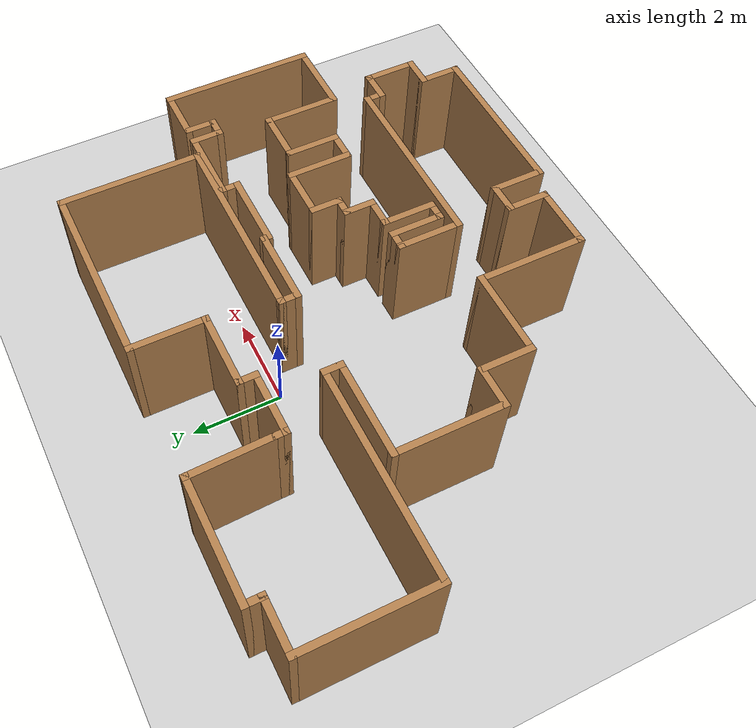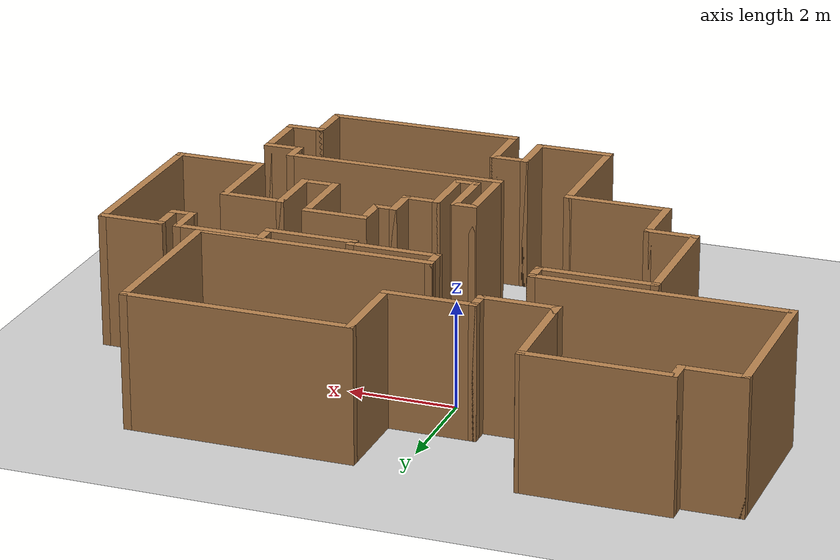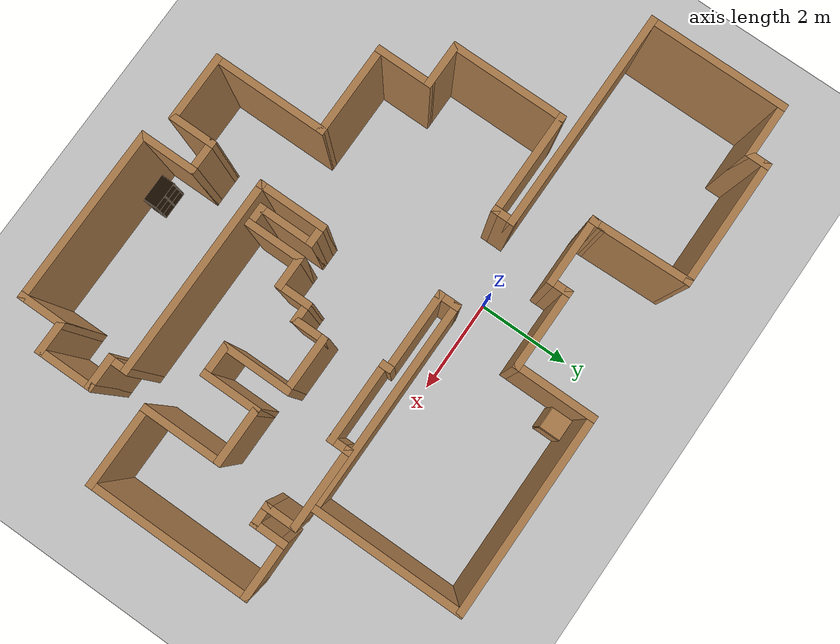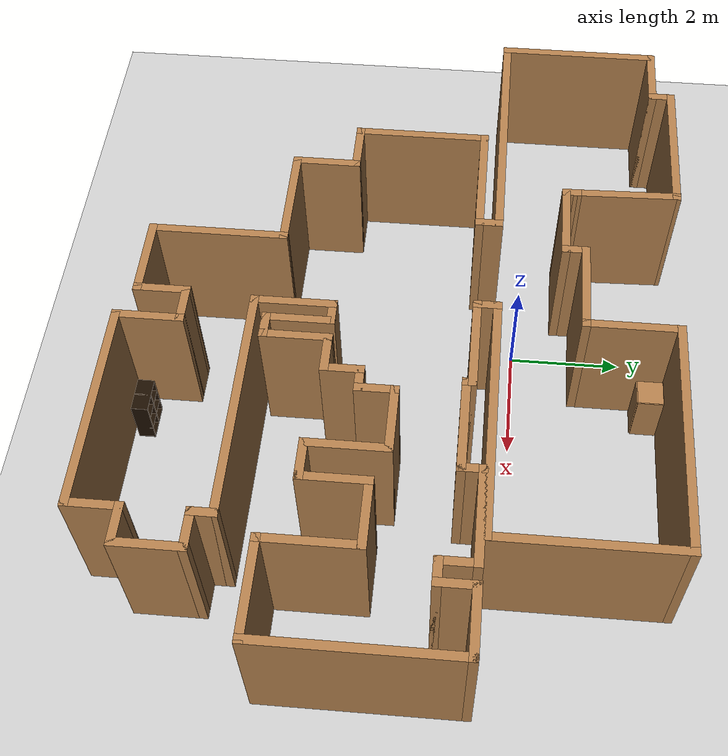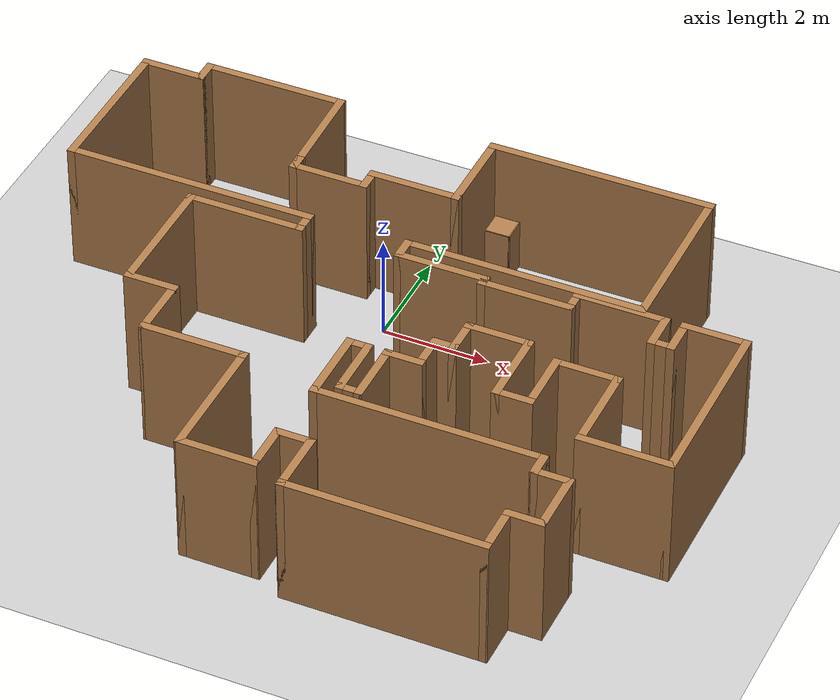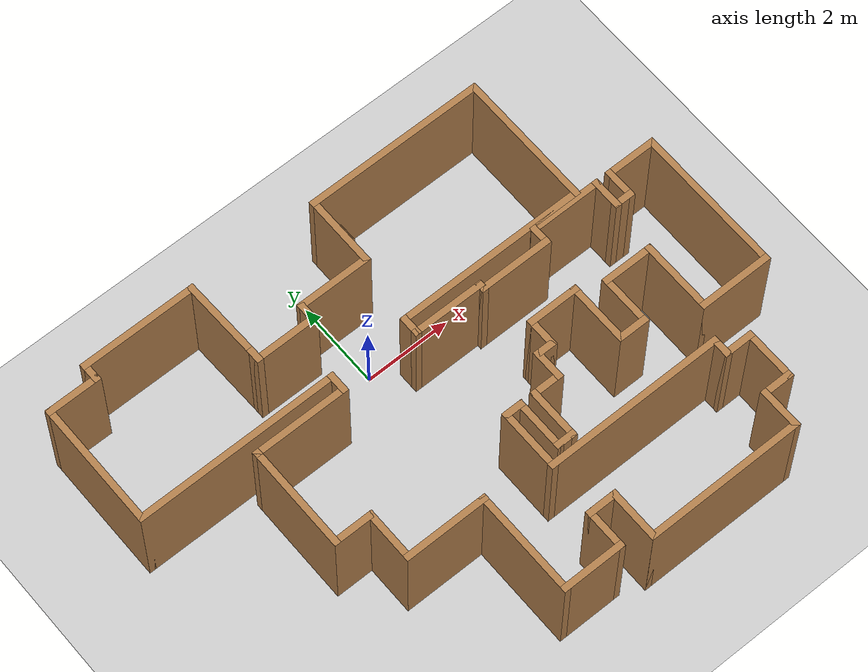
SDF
<sdf version="1.6">
 <world name="default">
  <light name="sun" type="directional">
   <pose>0 0 10 0 -0 0</pose>
   <diffuse>0.8 0.8 0.8 1</diffuse>
   <specular>0.2 0.2 0.2 1</specular>
   <attenuation>
    <range>1000</range>
    <constant>0.9</constant>
    <linear>0.01</linear>
    <quadratic>0.001</quadratic>
   </attenuation>
   <direction>-0.5 0.1 -0.9</direction>
  </light>
  <model name="ground_plane">
   <static>1</static>
   <link name="link">
    <collision name="collision">
     <geometry><plane><normal>0 0 1</normal><size>100 100</size></plane></geometry>
     <surface>
      <contact><collide_bitmask>65535</collide_bitmask></contact>
      <friction><ode><mu>100</mu><mu2>50</mu2></ode></friction>
     </surface>
    </collision>
    <visual name="visual">
     <cast_shadows>0</cast_shadows>
     <geometry><plane><normal>0 0 1</normal><size>100 100</size></plane></geometry>
     <material>
      <script><uri>file://media/materials/scripts/gazebo.material</uri><name>Gazebo/Grey</name></script>
     </material>
    </visual>
   </link>
  </model>
  <gravity>0 0 -9.8</gravity>
  <magnetic_field>6e-06 2.3e-05 -4.2e-05</magnetic_field>
  <atmosphere type="adiabatic"/>
  <physics name="default_physics" default="0" type="ode">
   <max_step_size>0.001</max_step_size>
   <real_time_factor>1</real_time_factor>
   <real_time_update_rate>1000</real_time_update_rate>
  </physics>
  <scene><ambient>0.4 0.4 0.4 1</ambient><background>0.7 0.7 0.7 1</background><shadows>1</shadows></scene>
  <audio><device>default</device></audio>
  <spherical_coordinates>
   <surface_model>EARTH_WGS84</surface_model>
   <latitude_deg>0</latitude_deg>
   <longitude_deg>0</longitude_deg>
   <elevation>0</elevation>
   <heading_deg>0</heading_deg>
  </spherical_coordinates>
  <model name="map_61">
   <pose>0.527991 -2.02355 0 0 -0 0</pose>
   <link name="Wall_0">
    <collision name="Wall_0_Collision">
     <geometry><box><size>2.75 0.15 2.5</size></box></geometry>
     <pose>0 0 1.25 0 -0 0</pose>
    </collision>
    <visual name="Wall_0_Visual">
     <pose>0 0 1.25 0 -0 0</pose>
     <geometry><box><size>2.75 0.15 2.5</size></box></geometry>
     <material>
      <script><uri>file://media/materials/scripts/gazebo.material</uri><name>Gazebo/Wood</name></script>
      <ambient>1 1 1 1</ambient>
     </material>
     <meta><layer>0</layer></meta>
    </visual>
    <pose>-3.95 4.79897 0 0 -0 3.14159</pose>
   </link>
   <link name="Wall_1">
    <collision name="Wall_1_Collision">
     <geometry><box><size>0.5 0.15 2.5</size></box></geometry>
     <pose>0 0 1.25 0 -0 0</pose>
    </collision>
    <visual name="Wall_1_Visual">
     <pose>0 0 1.25 0 -0 0</pose>
     <geometry><box><size>0.5 0.15 2.5</size></box></geometry>
     <material>
      <script><uri>file://media/materials/scripts/gazebo.material</uri><name>Gazebo/Wood</name></script>
      <ambient>1 1 1 1</ambient>
     </material>
     <meta><layer>0</layer></meta>
    </visual>
    <pose>-5.25 4.62397 0 0 -0 -1.5708</pose>
   </link>
   <link name="Wall_10">
    <collision name="Wall_10_Collision">
     <geometry><box><size>2 0.15 2.5</size></box></geometry>
     <pose>0 0 1.25 0 -0 0</pose>
    </collision>
    <visual name="Wall_10_Visual">
     <pose>0 0 1.25 0 -0 0</pose>
     <geometry><box><size>2 0.15 2.5</size></box></geometry>
     <material>
      <script><uri>file://media/materials/scripts/gazebo.material</uri><name>Gazebo/Wood</name></script>
      <ambient>1 1 1 1</ambient>
     </material>
     <meta><layer>0</layer></meta>
    </visual>
    <pose>-2.075 -2.20103 0 0 -0 0</pose>
   </link>
   <link name="Wall_11">
    <collision name="Wall_11_Collision">
     <geometry><box><size>2.5 0.15 2.5</size></box></geometry>
     <pose>0 0 1.25 0 -0 0</pose>
    </collision>
    <visual name="Wall_11_Visual">
     <pose>0 0 1.25 0 -0 0</pose>
     <geometry><box><size>2.5 0.15 2.5</size></box></geometry>
     <material>
      <script><uri>file://media/materials/scripts/gazebo.material</uri><name>Gazebo/Wood</name></script>
      <ambient>1 1 1 1</ambient>
     </material>
     <meta><layer>0</layer></meta>
    </visual>
    <pose>-1.15 -3.37603 0 0 -0 -1.5708</pose>
   </link>
   <link name="Wall_12">
    <collision name="Wall_12_Collision">
     <geometry><box><size>1.5 0.15 2.5</size></box></geometry>
     <pose>0 0 1.25 0 -0 0</pose>
    </collision>
    <visual name="Wall_12_Visual">
     <pose>0 0 1.25 0 -0 0</pose>
     <geometry><box><size>1.5 0.15 2.5</size></box></geometry>
     <material>
      <script><uri>file://media/materials/scripts/gazebo.material</uri><name>Gazebo/Wood</name></script>
      <ambient>1 1 1 1</ambient>
     </material>
     <meta><layer>0</layer></meta>
    </visual>
    <pose>-0.475 -4.55103 0 0 -0 0</pose>
   </link>
   <link name="Wall_13">
    <collision name="Wall_13_Collision">
     <geometry><box><size>1 0.15 2.5</size></box></geometry>
     <pose>0 0 1.25 0 -0 0</pose>
    </collision>
    <visual name="Wall_13_Visual">
     <pose>0 0 1.25 0 -0 0</pose>
     <geometry><box><size>1 0.15 2.5</size></box></geometry>
     <material>
      <script><uri>file://media/materials/scripts/gazebo.material</uri><name>Gazebo/Wood</name></script>
      <ambient>1 1 1 1</ambient>
     </material>
     <meta><layer>0</layer></meta>
    </visual>
    <pose>0.2 -4.12603 0 0 -0 1.5708</pose>
   </link>
   <link name="Wall_14">
    <collision name="Wall_14_Collision">
     <geometry><box><size>0.75 0.15 2.5</size></box></geometry>
     <pose>0 0 1.25 0 -0 0</pose>
    </collision>
    <visual name="Wall_14_Visual">
     <pose>0 0 1.25 0 -0 0</pose>
     <geometry><box><size>0.75 0.15 2.5</size></box></geometry>
     <material>
      <script><uri>file://media/materials/scripts/gazebo.material</uri><name>Gazebo/Wood</name></script>
      <ambient>1 1 1 1</ambient>
     </material>
     <meta><layer>0</layer></meta>
    </visual>
    <pose>0.5 -3.70103 0 0 -0 0</pose>
   </link>
   <link name="Wall_15">
    <collision name="Wall_15_Collision">
     <geometry><box><size>1.25 0.15 2.5</size></box></geometry>
     <pose>0 0 1.25 0 -0 0</pose>
    </collision>
    <visual name="Wall_15_Visual">
     <pose>0 0 1.25 0 -0 0</pose>
     <geometry><box><size>1.25 0.15 2.5</size></box></geometry>
     <material>
      <script><uri>file://media/materials/scripts/gazebo.material</uri><name>Gazebo/Wood</name></script>
      <ambient>1 1 1 1</ambient>
     </material>
     <meta><layer>0</layer></meta>
    </visual>
    <pose>0.8 -4.25103 0 0 -0 -1.5708</pose>
   </link>
   <link name="Wall_16">
    <collision name="Wall_16_Collision">
     <geometry><box><size>3.75 0.15 2.5</size></box></geometry>
     <pose>0 0 1.25 0 -0 0</pose>
    </collision>
    <visual name="Wall_16_Visual">
     <pose>0 0 1.25 0 -0 0</pose>
     <geometry><box><size>3.75 0.15 2.5</size></box></geometry>
     <material>
      <script><uri>file://media/materials/scripts/gazebo.material</uri><name>Gazebo/Wood</name></script>
      <ambient>1 1 1 1</ambient>
     </material>
     <meta><layer>0</layer></meta>
    </visual>
    <pose>2.6 -4.80103 0 0 -0 0</pose>
   </link>
   <link name="Wall_17">
    <collision name="Wall_17_Collision">
     <geometry><box><size>1 0.15 2.5</size></box></geometry>
     <pose>0 0 1.25 0 -0 0</pose>
    </collision>
    <visual name="Wall_17_Visual">
     <pose>0 0 1.25 0 -0 0</pose>
     <geometry><box><size>1 0.15 2.5</size></box></geometry>
     <material>
      <script><uri>file://media/materials/scripts/gazebo.material</uri><name>Gazebo/Wood</name></script>
      <ambient>1 1 1 1</ambient>
     </material>
     <meta><layer>0</layer></meta>
    </visual>
    <pose>4.4 -4.37603 0 0 -0 1.5708</pose>
   </link>
   <link name="Wall_18">
    <collision name="Wall_18_Collision">
     <geometry><box><size>0.75 0.15 2.5</size></box></geometry>
     <pose>0 0 1.25 0 -0 0</pose>
    </collision>
    <visual name="Wall_18_Visual">
     <pose>0 0 1.25 0 -0 0</pose>
     <geometry><box><size>0.75 0.15 2.5</size></box></geometry>
     <material>
      <script><uri>file://media/materials/scripts/gazebo.material</uri><name>Gazebo/Wood</name></script>
      <ambient>1 1 1 1</ambient>
     </material>
     <meta><layer>0</layer></meta>
    </visual>
    <pose>4.7 -3.95103 0 0 -0 0</pose>
   </link>
   <link name="Wall_19">
    <collision name="Wall_19_Collision">
     <geometry><box><size>1.25 0.15 2.5</size></box></geometry>
     <pose>0 0 1.25 0 -0 0</pose>
    </collision>
    <visual name="Wall_19_Visual">
     <pose>0 0 1.25 0 -0 0</pose>
     <geometry><box><size>1.25 0.15 2.5</size></box></geometry>
     <material>
      <script><uri>file://media/materials/scripts/gazebo.material</uri><name>Gazebo/Wood</name></script>
      <ambient>1 1 1 1</ambient>
     </material>
     <meta><layer>0</layer></meta>
    </visual>
    <pose>5 -3.40103 0 0 -0 1.5708</pose>
   </link>
   <link name="Wall_2">
    <collision name="Wall_2_Collision">
     <geometry><box><size>1.25 0.15 2.5</size></box></geometry>
     <pose>0 0 1.25 0 -0 0</pose>
    </collision>
    <visual name="Wall_2_Visual">
     <pose>0 0 1.25 0 -0 0</pose>
     <geometry><box><size>1.25 0.15 2.5</size></box></geometry>
     <material>
      <script><uri>file://media/materials/scripts/gazebo.material</uri><name>Gazebo/Wood</name></script>
      <ambient>1 1 1 1</ambient>
     </material>
     <meta><layer>0</layer></meta>
    </visual>
    <pose>-5.8 4.44897 0 0 -0 3.14159</pose>
   </link>
   <link name="Wall_22">
    <collision name="Wall_22_Collision">
     <geometry><box><size>0.75 0.15 2.5</size></box></geometry>
     <pose>0 0 1.25 0 -0 0</pose>
    </collision>
    <visual name="Wall_22_Visual">
     <pose>0 0 1.25 0 -0 0</pose>
     <geometry><box><size>0.75 0.15 2.5</size></box></geometry>
     <material>
      <script><uri>file://media/materials/scripts/gazebo.material</uri><name>Gazebo/Wood</name></script>
      <ambient>1 1 1 1</ambient>
     </material>
     <meta><layer>0</layer></meta>
    </visual>
    <pose>4.7 -2.85103 0 0 -0 3.14159</pose>
   </link>
   <link name="Wall_23">
    <collision name="Wall_23_Collision">
     <geometry><box><size>0.5 0.15 2.5</size></box></geometry>
     <pose>0 0 1.25 0 -0 0</pose>
    </collision>
    <visual name="Wall_23_Visual">
     <pose>0 0 1.25 0 -0 0</pose>
     <geometry><box><size>0.5 0.15 2.5</size></box></geometry>
     <material>
      <script><uri>file://media/materials/scripts/gazebo.material</uri><name>Gazebo/Wood</name></script>
      <ambient>1 1 1 1</ambient>
     </material>
     <meta><layer>0</layer></meta>
    </visual>
    <pose>4.4 -2.67603 0 0 -0 1.5708</pose>
   </link>
   <link name="Wall_24">
    <collision name="Wall_24_Collision">
     <geometry><box><size>4.25 0.15 2.5</size></box></geometry>
     <pose>0 0 1.25 0 -0 0</pose>
    </collision>
    <visual name="Wall_24_Visual">
     <pose>0 0 1.25 0 -0 0</pose>
     <geometry><box><size>4.25 0.15 2.5</size></box></geometry>
     <material>
      <script><uri>file://media/materials/scripts/gazebo.material</uri><name>Gazebo/Wood</name></script>
      <ambient>1 1 1 1</ambient>
     </material>
     <meta><layer>0</layer></meta>
    </visual>
    <pose>2.35 -2.50103 0 0 -0 3.14159</pose>
   </link>
   <link name="Wall_25">
    <collision name="Wall_25_Collision">
     <geometry><box><size>1.5 0.15 2.5</size></box></geometry>
     <pose>0 0 1.25 0 -0 0</pose>
    </collision>
    <visual name="Wall_25_Visual">
     <pose>0 0 1.25 0 -0 0</pose>
     <geometry><box><size>1.5 0.15 2.5</size></box></geometry>
     <material>
      <script><uri>file://media/materials/scripts/gazebo.material</uri><name>Gazebo/Wood</name></script>
      <ambient>1 1 1 1</ambient>
     </material>
     <meta><layer>0</layer></meta>
    </visual>
    <pose>0.3 -1.82603 0 0 -0 1.5708</pose>
   </link>
   <link name="Wall_26">
    <collision name="Wall_26_Collision">
     <geometry><box><size>0.5 0.15 2.5</size></box></geometry>
     <pose>0 0 1.25 0 -0 0</pose>
    </collision>
    <visual name="Wall_26_Visual">
     <pose>0 0 1.25 0 -0 0</pose>
     <geometry><box><size>0.5 0.15 2.5</size></box></geometry>
     <material>
      <script><uri>file://media/materials/scripts/gazebo.material</uri><name>Gazebo/Wood</name></script>
      <ambient>1 1 1 1</ambient>
     </material>
     <meta><layer>0</layer></meta>
    </visual>
    <pose>0.475 -1.15103 0 0 -0 0</pose>
   </link>
   <link name="Wall_27">
    <collision name="Wall_27_Collision">
     <geometry><box><size>1.25 0.15 2.5</size></box></geometry>
     <pose>0 0 1.25 0 -0 0</pose>
    </collision>
    <visual name="Wall_27_Visual">
     <pose>0 0 1.25 0 -0 0</pose>
     <geometry><box><size>1.25 0.15 2.5</size></box></geometry>
     <material>
      <script><uri>file://media/materials/scripts/gazebo.material</uri><name>Gazebo/Wood</name></script>
      <ambient>1 1 1 1</ambient>
     </material>
     <meta><layer>0</layer></meta>
    </visual>
    <pose>0.65 -1.70103 0 0 -0 -1.5708</pose>
   </link>
   <link name="Wall_28">
    <collision name="Wall_28_Collision">
     <geometry><box><size>0.5 0.15 2.5</size></box></geometry>
     <pose>0 0 1.25 0 -0 0</pose>
    </collision>
    <visual name="Wall_28_Visual">
     <pose>0 0 1.25 0 -0 0</pose>
     <geometry><box><size>0.5 0.15 2.5</size></box></geometry>
     <material>
      <script><uri>file://media/materials/scripts/gazebo.material</uri><name>Gazebo/Wood</name></script>
      <ambient>1 1 1 1</ambient>
     </material>
     <meta><layer>0</layer></meta>
    </visual>
    <pose>0.825 -2.25103 0 0 -0 0</pose>
   </link>
   <link name="Wall_29">
    <collision name="Wall_29_Collision">
     <geometry><box><size>1.25 0.15 2.5</size></box></geometry>
     <pose>0 0 1.25 0 -0 0</pose>
    </collision>
    <visual name="Wall_29_Visual">
     <pose>0 0 1.25 0 -0 0</pose>
     <geometry><box><size>1.25 0.15 2.5</size></box></geometry>
     <material>
      <script><uri>file://media/materials/scripts/gazebo.material</uri><name>Gazebo/Wood</name></script>
      <ambient>1 1 1 1</ambient>
     </material>
     <meta><layer>0</layer></meta>
    </visual>
    <pose>1 -1.70103 0 0 -0 1.5708</pose>
   </link>
   <link name="Wall_3">
    <collision name="Wall_3_Collision">
     <geometry><box><size>3 0.15 2.5</size></box></geometry>
     <pose>0 0 1.25 0 -0 0</pose>
    </collision>
    <visual name="Wall_3_Visual">
     <pose>0 0 1.25 0 -0 0</pose>
     <geometry><box><size>3 0.15 2.5</size></box></geometry>
     <material>
      <script><uri>file://media/materials/scripts/gazebo.material</uri><name>Gazebo/Wood</name></script>
      <ambient>1 1 1 1</ambient>
     </material>
     <meta><layer>0</layer></meta>
    </visual>
    <pose>-6.35 3.02397 0 0 -0 -1.5708</pose>
   </link>
   <link name="Wall_30">
    <collision name="Wall_30_Collision">
     <geometry><box><size>0.75 0.15 2.5</size></box></geometry>
     <pose>0 0 1.25 0 -0 0</pose>
    </collision>
    <visual name="Wall_30_Visual">
     <pose>0 0 1.25 0 -0 0</pose>
     <geometry><box><size>0.75 0.15 2.5</size></box></geometry>
     <material>
      <script><uri>file://media/materials/scripts/gazebo.material</uri><name>Gazebo/Wood</name></script>
      <ambient>1 1 1 1</ambient>
     </material>
     <meta><layer>0</layer></meta>
    </visual>
    <pose>1.3 -1.15103 0 0 -0 0</pose>
   </link>
   <link name="Wall_31">
    <collision name="Wall_31_Collision">
     <geometry><box><size>0.75 0.15 2.5</size></box></geometry>
     <pose>0 0 1.25 0 -0 0</pose>
    </collision>
    <visual name="Wall_31_Visual">
     <pose>0 0 1.25 0 -0 0</pose>
     <geometry><box><size>0.75 0.15 2.5</size></box></geometry>
     <material>
      <script><uri>file://media/materials/scripts/gazebo.material</uri><name>Gazebo/Wood</name></script>
      <ambient>1 1 1 1</ambient>
     </material>
     <meta><layer>0</layer></meta>
    </visual>
    <pose>1.6 -0.851027 0 0 -0 1.5708</pose>
   </link>
   <link name="Wall_32">
    <collision name="Wall_32_Collision">
     <geometry><box><size>0.5 0.15 2.5</size></box></geometry>
     <pose>0 0 1.25 0 -0 0</pose>
    </collision>
    <visual name="Wall_32_Visual">
     <pose>0 0 1.25 0 -0 0</pose>
     <geometry><box><size>0.5 0.15 2.5</size></box></geometry>
     <material>
      <script><uri>file://media/materials/scripts/gazebo.material</uri><name>Gazebo/Wood</name></script>
      <ambient>1 1 1 1</ambient>
     </material>
     <meta><layer>0</layer></meta>
    </visual>
    <pose>1.775 -0.551027 0 0 -0 0</pose>
   </link>
   <link name="Wall_33">
    <collision name="Wall_33_Collision">
     <geometry><box><size>0.75 0.15 2.5</size></box></geometry>
     <pose>0 0 1.25 0 -0 0</pose>
    </collision>
    <visual name="Wall_33_Visual">
     <pose>0 0 1.25 0 -0 0</pose>
     <geometry><box><size>0.75 0.15 2.5</size></box></geometry>
     <material>
      <script><uri>file://media/materials/scripts/gazebo.material</uri><name>Gazebo/Wood</name></script>
      <ambient>1 1 1 1</ambient>
     </material>
     <meta><layer>0</layer></meta>
    </visual>
    <pose>1.95 -0.251027 0 0 -0 1.5708</pose>
   </link>
   <link name="Wall_34">
    <collision name="Wall_34_Collision">
     <geometry><box><size>1.25 0.15 2.5</size></box></geometry>
     <pose>0 0 1.25 0 -0 0</pose>
    </collision>
    <visual name="Wall_34_Visual">
     <pose>0 0 1.25 0 -0 0</pose>
     <geometry><box><size>1.25 0.15 2.5</size></box></geometry>
     <material>
      <script><uri>file://media/materials/scripts/gazebo.material</uri><name>Gazebo/Wood</name></script>
      <ambient>1 1 1 1</ambient>
     </material>
     <meta><layer>0</layer></meta>
    </visual>
    <pose>2.5 0.048973 0 0 -0 0</pose>
   </link>
   <link name="Wall_35">
    <collision name="Wall_35_Collision">
     <geometry><box><size>1.5 0.15 2.5</size></box></geometry>
     <pose>0 0 1.25 0 -0 0</pose>
    </collision>
    <visual name="Wall_35_Visual">
     <pose>0 0 1.25 0 -0 0</pose>
     <geometry><box><size>1.5 0.15 2.5</size></box></geometry>
     <material>
      <script><uri>file://media/materials/scripts/gazebo.material</uri><name>Gazebo/Wood</name></script>
      <ambient>1 1 1 1</ambient>
     </material>
     <meta><layer>0</layer></meta>
    </visual>
    <pose>3.05 -0.626027 0 0 -0 -1.5708</pose>
   </link>
   <link name="Wall_36">
    <collision name="Wall_36_Collision">
     <geometry><box><size>0.75 0.15 2.5</size></box></geometry>
     <pose>0 0 1.25 0 -0 0</pose>
    </collision>
    <visual name="Wall_36_Visual">
     <pose>0 0 1.25 0 -0 0</pose>
     <geometry><box><size>0.75 0.15 2.5</size></box></geometry>
     <material>
      <script><uri>file://media/materials/scripts/gazebo.material</uri><name>Gazebo/Wood</name></script>
      <ambient>1 1 1 1</ambient>
     </material>
     <meta><layer>0</layer></meta>
    </visual>
    <pose>3.35 -1.30103 0 0 -0 0</pose>
   </link>
   <link name="Wall_37">
    <collision name="Wall_37_Collision">
     <geometry><box><size>1.25 0.15 2.5</size></box></geometry>
     <pose>0 0 1.25 0 -0 0</pose>
    </collision>
    <visual name="Wall_37_Visual">
     <pose>0 0 1.25 0 -0 0</pose>
     <geometry><box><size>1.25 0.15 2.5</size></box></geometry>
     <material>
      <script><uri>file://media/materials/scripts/gazebo.material</uri><name>Gazebo/Wood</name></script>
      <ambient>1 1 1 1</ambient>
     </material>
     <meta><layer>0</layer></meta>
    </visual>
    <pose>3.65 -0.751027 0 0 -0 1.5708</pose>
   </link>
   <link name="Wall_38">
    <collision name="Wall_38_Collision">
     <geometry><box><size>1.25 0.15 2.5</size></box></geometry>
     <pose>0 0 1.25 0 -0 0</pose>
    </collision>
    <visual name="Wall_38_Visual">
     <pose>0 0 1.25 0 -0 0</pose>
     <geometry><box><size>1.25 0.15 2.5</size></box></geometry>
     <material>
      <script><uri>file://media/materials/scripts/gazebo.material</uri><name>Gazebo/Wood</name></script>
      <ambient>1 1 1 1</ambient>
     </material>
     <meta><layer>0</layer></meta>
    </visual>
    <pose>4.2 -0.201027 0 0 -0 0</pose>
   </link>
   <link name="Wall_39">
    <collision name="Wall_39_Collision">
     <geometry><box><size>1.75 0.15 2.5</size></box></geometry>
     <pose>0 0 1.25 0 -0 0</pose>
    </collision>
    <visual name="Wall_39_Visual">
     <pose>0 0 1.25 0 -0 0</pose>
     <geometry><box><size>1.75 0.15 2.5</size></box></geometry>
     <material>
      <script><uri>file://media/materials/scripts/gazebo.material</uri><name>Gazebo/Wood</name></script>
      <ambient>1 1 1 1</ambient>
     </material>
     <meta><layer>0</layer></meta>
    </visual>
    <pose>4.75 -1.00103 0 0 -0 -1.5708</pose>
   </link>
   <link name="Wall_4">
    <collision name="Wall_4_Collision">
     <geometry><box><size>4.75 0.15 2.5</size></box></geometry>
     <pose>0 0 1.25 0 -0 0</pose>
    </collision>
    <visual name="Wall_4_Visual">
     <pose>0 0 1.25 0 -0 0</pose>
     <geometry><box><size>4.75 0.15 2.5</size></box></geometry>
     <material>
      <script><uri>file://media/materials/scripts/gazebo.material</uri><name>Gazebo/Wood</name></script>
      <ambient>1 1 1 1</ambient>
     </material>
     <meta><layer>0</layer></meta>
    </visual>
    <pose>-4.05 1.59897 0 0 -0 0</pose>
   </link>
   <link name="Wall_40">
    <collision name="Wall_40_Collision">
     <geometry><box><size>1.75 0.15 2.5</size></box></geometry>
     <pose>0 0 1.25 0 -0 0</pose>
    </collision>
    <visual name="Wall_40_Visual">
     <pose>0 0 1.25 0 -0 0</pose>
     <geometry><box><size>1.75 0.15 2.5</size></box></geometry>
     <material>
      <script><uri>file://media/materials/scripts/gazebo.material</uri><name>Gazebo/Wood</name></script>
      <ambient>1 1 1 1</ambient>
     </material>
     <meta><layer>0</layer></meta>
    </visual>
    <pose>5.55 -1.80103 0 0 -0 0</pose>
   </link>
   <link name="Wall_41">
    <collision name="Wall_41_Collision">
     <geometry><box><size>3.5 0.15 2.5</size></box></geometry>
     <pose>0 0 1.25 0 -0 0</pose>
    </collision>
    <visual name="Wall_41_Visual">
     <pose>0 0 1.25 0 -0 0</pose>
     <geometry><box><size>3.5 0.15 2.5</size></box></geometry>
     <material>
      <script><uri>file://media/materials/scripts/gazebo.material</uri><name>Gazebo/Wood</name></script>
      <ambient>1 1 1 1</ambient>
     </material>
     <meta><layer>0</layer></meta>
    </visual>
    <pose>6.35 -0.126027 0 0 -0 1.5708</pose>
   </link>
   <link name="Wall_42">
    <collision name="Wall_42_Collision">
     <geometry><box><size>1.25 0.15 2.5</size></box></geometry>
     <pose>0 0 1.25 0 -0 0</pose>
    </collision>
    <visual name="Wall_42_Visual">
     <pose>0 0 1.25 0 -0 0</pose>
     <geometry><box><size>1.25 0.15 2.5</size></box></geometry>
     <material>
      <script><uri>file://media/materials/scripts/gazebo.material</uri><name>Gazebo/Wood</name></script>
      <ambient>1 1 1 1</ambient>
     </material>
     <meta><layer>0</layer></meta>
    </visual>
    <pose>5.8 1.54897 0 0 -0 3.14159</pose>
   </link>
   <link name="Wall_43">
    <collision name="Wall_43_Collision">
     <geometry><box><size>0.75 0.15 2.5</size></box></geometry>
     <pose>0 0 1.25 0 -0 0</pose>
    </collision>
    <visual name="Wall_43_Visual">
     <pose>0 0 1.25 0 -0 0</pose>
     <geometry><box><size>0.75 0.15 2.5</size></box></geometry>
     <material>
      <script><uri>file://media/materials/scripts/gazebo.material</uri><name>Gazebo/Wood</name></script>
      <ambient>1 1 1 1</ambient>
     </material>
     <meta><layer>0</layer></meta>
    </visual>
    <pose>5.25 1.24897 0 0 -0 -1.5708</pose>
   </link>
   <link name="Wall_44">
    <collision name="Wall_44_Collision">
     <geometry><box><size>0.5 0.15 2.5</size></box></geometry>
     <pose>0 0 1.25 0 -0 0</pose>
    </collision>
    <visual name="Wall_44_Visual">
     <pose>0 0 1.25 0 -0 0</pose>
     <geometry><box><size>0.5 0.15 2.5</size></box></geometry>
     <material>
      <script><uri>file://media/materials/scripts/gazebo.material</uri><name>Gazebo/Wood</name></script>
      <ambient>1 1 1 1</ambient>
     </material>
     <meta><layer>0</layer></meta>
    </visual>
    <pose>5.075 0.948973 0 0 -0 3.14159</pose>
   </link>
   <link name="Wall_47">
    <collision name="Wall_47_Collision">
     <geometry><box><size>0.75 0.15 2.5</size></box></geometry>
     <pose>0 0 1.25 0 -0 0</pose>
    </collision>
    <visual name="Wall_47_Visual">
     <pose>0 0 1.25 0 -0 0</pose>
     <geometry><box><size>0.75 0.15 2.5</size></box></geometry>
     <material>
      <script><uri>file://media/materials/scripts/gazebo.material</uri><name>Gazebo/Wood</name></script>
      <ambient>1 1 1 1</ambient>
     </material>
     <meta><layer>0</layer></meta>
    </visual>
    <pose>4.9 1.24897 0 0 -0 1.5708</pose>
   </link>
   <link name="Wall_48">
    <collision name="Wall_48_Collision">
     <geometry><box><size>1.75 0.15 2.5</size></box></geometry>
     <pose>0 0 1.25 0 -0 0</pose>
    </collision>
    <visual name="Wall_48_Visual">
     <pose>0 0 1.25 0 -0 0</pose>
     <geometry><box><size>1.75 0.15 2.5</size></box></geometry>
     <material>
      <script><uri>file://media/materials/scripts/gazebo.material</uri><name>Gazebo/Wood</name></script>
      <ambient>1 1 1 1</ambient>
     </material>
     <meta><layer>0</layer></meta>
    </visual>
    <pose>4.1 1.54897 0 0 -0 3.14159</pose>
   </link>
   <link name="Wall_49">
    <collision name="Wall_49_Collision">
     <geometry><box><size>0.5 0.15 2.5</size></box></geometry>
     <pose>0 0 1.25 0 -0 0</pose>
    </collision>
    <visual name="Wall_49_Visual">
     <pose>0 0 1.25 0 -0 0</pose>
     <geometry><box><size>0.5 0.15 2.5</size></box></geometry>
     <material>
      <script><uri>file://media/materials/scripts/gazebo.material</uri><name>Gazebo/Wood</name></script>
      <ambient>1 1 1 1</ambient>
     </material>
     <meta><layer>0</layer></meta>
    </visual>
    <pose>3.3 1.37397 0 0 -0 -1.5708</pose>
   </link>
   <link name="Wall_5">
    <collision name="Wall_5_Collision">
     <geometry><box><size>0.5 0.15 2.5</size></box></geometry>
     <pose>0 0 1.25 0 -0 0</pose>
    </collision>
    <visual name="Wall_5_Visual">
     <pose>0 0 1.25 0 -0 0</pose>
     <geometry><box><size>0.5 0.15 2.5</size></box></geometry>
     <material>
      <script><uri>file://media/materials/scripts/gazebo.material</uri><name>Gazebo/Wood</name></script>
      <ambient>1 1 1 1</ambient>
     </material>
     <meta><layer>0</layer></meta>
    </visual>
    <pose>-1.75 1.42397 0 0 -0 -1.5708</pose>
   </link>
   <link name="Wall_50">
    <collision name="Wall_50_Collision">
     <geometry><box><size>1.75 0.15 2.5</size></box></geometry>
     <pose>0 0 1.25 0 -0 0</pose>
    </collision>
    <visual name="Wall_50_Visual">
     <pose>0 0 1.25 0 -0 0</pose>
     <geometry><box><size>1.75 0.15 2.5</size></box></geometry>
     <material>
      <script><uri>file://media/materials/scripts/gazebo.material</uri><name>Gazebo/Wood</name></script>
      <ambient>1 1 1 1</ambient>
     </material>
     <meta><layer>0</layer></meta>
    </visual>
    <pose>2.5 1.19897 0 0 -0 3.14159</pose>
   </link>
   <link name="Wall_51">
    <collision name="Wall_51_Collision">
     <geometry><box><size>0.25 0.15 2.5</size></box></geometry>
     <pose>0 0 1.25 0 -0 0</pose>
    </collision>
    <visual name="Wall_51_Visual">
     <pose>0 0 1.25 0 -0 0</pose>
     <geometry><box><size>0.25 0.15 2.5</size></box></geometry>
     <material>
      <script><uri>file://media/materials/scripts/gazebo.material</uri><name>Gazebo/Wood</name></script>
      <ambient>1 1 1 1</ambient>
     </material>
     <meta><layer>0</layer></meta>
    </visual>
    <pose>1.7 1.24897 0 0 -0 1.5708</pose>
   </link>
   <link name="Wall_52">
    <collision name="Wall_52_Collision">
     <geometry><box><size>1.75 0.15 2.5</size></box></geometry>
     <pose>0 0 1.25 0 -0 0</pose>
    </collision>
    <visual name="Wall_52_Visual">
     <pose>0 0 1.25 0 -0 0</pose>
     <geometry><box><size>1.75 0.15 2.5</size></box></geometry>
     <material>
      <script><uri>file://media/materials/scripts/gazebo.material</uri><name>Gazebo/Wood</name></script>
      <ambient>1 1 1 1</ambient>
     </material>
     <meta><layer>0</layer></meta>
    </visual>
    <pose>0.9 1.29897 0 0 -0 3.14159</pose>
   </link>
   <link name="Wall_53">
    <collision name="Wall_53_Collision">
     <geometry><box><size>0.5 0.15 2.5</size></box></geometry>
     <pose>0 0 1.25 0 -0 0</pose>
    </collision>
    <visual name="Wall_53_Visual">
     <pose>0 0 1.25 0 -0 0</pose>
     <geometry><box><size>0.5 0.15 2.5</size></box></geometry>
     <material>
      <script><uri>file://media/materials/scripts/gazebo.material</uri><name>Gazebo/Wood</name></script>
      <ambient>1 1 1 1</ambient>
     </material>
     <meta><layer>0</layer></meta>
    </visual>
    <pose>0.1 1.47397 0 0 -0 1.5708</pose>
   </link>
   <link name="Wall_54">
    <collision name="Wall_54_Collision">
     <geometry><box><size>4.5 0.15 2.5</size></box></geometry>
     <pose>0 0 1.25 0 -0 0</pose>
    </collision>
    <visual name="Wall_54_Visual">
     <pose>0 0 1.25 0 -0 0</pose>
     <geometry><box><size>4.5 0.15 2.5</size></box></geometry>
     <material>
      <script><uri>file://media/materials/scripts/gazebo.material</uri><name>Gazebo/Wood</name></script>
      <ambient>1 1 1 1</ambient>
     </material>
     <meta><layer>0</layer></meta>
    </visual>
    <pose>2.275 1.64897 0 0 -0 0</pose>
   </link>
   <link name="Wall_55">
    <collision name="Wall_55_Collision">
     <geometry><box><size>3.25 0.15 2.5</size></box></geometry>
     <pose>0 0 1.25 0 -0 0</pose>
    </collision>
    <visual name="Wall_55_Visual">
     <pose>0 0 1.25 0 -0 0</pose>
     <geometry><box><size>3.25 0.15 2.5</size></box></geometry>
     <material>
      <script><uri>file://media/materials/scripts/gazebo.material</uri><name>Gazebo/Wood</name></script>
      <ambient>1 1 1 1</ambient>
     </material>
     <meta><layer>0</layer></meta>
    </visual>
    <pose>4.45 3.19897 0 0 -0 1.5708</pose>
   </link>
   <link name="Wall_56">
    <collision name="Wall_56_Collision">
     <geometry><box><size>4.25 0.15 2.5</size></box></geometry>
     <pose>0 0 1.25 0 -0 0</pose>
    </collision>
    <visual name="Wall_56_Visual">
     <pose>0 0 1.25 0 -0 0</pose>
     <geometry><box><size>4.25 0.15 2.5</size></box></geometry>
     <material>
      <script><uri>file://media/materials/scripts/gazebo.material</uri><name>Gazebo/Wood</name></script>
      <ambient>1 1 1 1</ambient>
     </material>
     <meta><layer>0</layer></meta>
    </visual>
    <pose>2.4 4.74897 0 0 -0 3.14159</pose>
   </link>
   <link name="Wall_6">
    <collision name="Wall_6_Collision">
     <geometry><box><size>2.25 0.15 2.5</size></box></geometry>
     <pose>0 0 1.25 0 -0 0</pose>
    </collision>
    <visual name="Wall_6_Visual">
     <pose>0 0 1.25 0 -0 0</pose>
     <geometry><box><size>2.25 0.15 2.5</size></box></geometry>
     <material>
      <script><uri>file://media/materials/scripts/gazebo.material</uri><name>Gazebo/Wood</name></script>
      <ambient>1 1 1 1</ambient>
     </material>
     <meta><layer>0</layer></meta>
    </visual>
    <pose>-2.8 1.24897 0 0 -0 3.14159</pose>
   </link>
   <link name="Wall_63">
    <collision name="Wall_63_Collision">
     <geometry><box><size>1.95069 0.15 2.5</size></box></geometry>
     <pose>0 0 1.25 0 -0 0</pose>
    </collision>
    <visual name="Wall_63_Visual">
     <pose>0 0 1.25 0 -0 0</pose>
     <geometry><box><size>1.95069 0.15 2.5</size></box></geometry>
     <material>
      <script><uri>file://media/materials/scripts/gazebo.material</uri><name>Gazebo/Wood</name></script>
      <ambient>1 1 1 1</ambient>
     </material>
     <meta><layer>0</layer></meta>
    </visual>
    <pose>-2.625 3.89897 0 0 -0 1.59857</pose>
   </link>
   <link name="Wall_7">
    <collision name="Wall_7_Collision">
     <geometry><box><size>2.5 0.15 2.5</size></box></geometry>
     <pose>0 0 1.25 0 -0 0</pose>
    </collision>
    <visual name="Wall_7_Visual">
     <pose>0 0 1.25 0 -0 0</pose>
     <geometry><box><size>2.5 0.15 2.5</size></box></geometry>
     <material>
      <script><uri>file://media/materials/scripts/gazebo.material</uri><name>Gazebo/Wood</name></script>
      <ambient>1 1 1 1</ambient>
     </material>
     <meta><layer>0</layer></meta>
    </visual>
    <pose>-3.85 0.073973 0 0 -0 -1.5708</pose>
   </link>
   <link name="Wall_79">
    <collision name="Wall_79_Collision">
     <geometry><box><size>1.75 0.15 2.5</size></box></geometry>
     <pose>0 0 1.25 0 -0 0</pose>
    </collision>
    <visual name="Wall_79_Visual">
     <pose>0 0 1.25 0 -0 0</pose>
     <geometry><box><size>1.75 0.15 2.5</size></box></geometry>
     <material>
      <script><uri>file://media/materials/scripts/gazebo.material</uri><name>Gazebo/Wood</name></script>
      <ambient>1 1 1 1</ambient>
     </material>
     <meta><layer>0</layer></meta>
    </visual>
    <pose>0.35 3.94897 0 0 -0 -1.5708</pose>
   </link>
   <link name="Wall_8">
    <collision name="Wall_8_Collision">
     <geometry><box><size>1 0.15 2.5</size></box></geometry>
     <pose>0 0 1.25 0 -0 0</pose>
    </collision>
    <visual name="Wall_8_Visual">
     <pose>0 0 1.25 0 -0 0</pose>
     <geometry><box><size>1 0.15 2.5</size></box></geometry>
     <material>
      <script><uri>file://media/materials/scripts/gazebo.material</uri><name>Gazebo/Wood</name></script>
      <ambient>1 1 1 1</ambient>
     </material>
     <meta><layer>0</layer></meta>
    </visual>
    <pose>-3.425 -1.10103 0 0 -0 0</pose>
   </link>
   <link name="Wall_80">
    <collision name="Wall_80_Collision">
     <geometry><box><size>1.75 0.15 2.5</size></box></geometry>
     <pose>0 0 1.25 0 -0 0</pose>
    </collision>
    <visual name="Wall_80_Visual">
     <pose>0 0 1.25 0 -0 0</pose>
     <geometry><box><size>1.75 0.15 2.5</size></box></geometry>
     <material>
      <script><uri>file://media/materials/scripts/gazebo.material</uri><name>Gazebo/Wood</name></script>
      <ambient>1 1 1 1</ambient>
     </material>
     <meta><layer>0</layer></meta>
    </visual>
    <pose>-0.45 3.14897 0 0 -0 3.14159</pose>
   </link>
   <link name="Wall_81">
    <collision name="Wall_81_Collision">
     <geometry><box><size>0.5 0.15 2.5</size></box></geometry>
     <pose>0 0 1.25 0 -0 0</pose>
    </collision>
    <visual name="Wall_81_Visual">
     <pose>0 0 1.25 0 -0 0</pose>
     <geometry><box><size>0.5 0.15 2.5</size></box></geometry>
     <material>
      <script><uri>file://media/materials/scripts/gazebo.material</uri><name>Gazebo/Wood</name></script>
      <ambient>1 1 1 1</ambient>
     </material>
     <meta><layer>0</layer></meta>
    </visual>
    <pose>-1.25 2.97397 0 0 -0 -1.5708</pose>
   </link>
   <link name="Wall_82">
    <collision name="Wall_82_Collision">
     <geometry><box><size>1.5 0.15 2.5</size></box></geometry>
     <pose>0 0 1.25 0 -0 0</pose>
    </collision>
    <visual name="Wall_82_Visual">
     <pose>0 0 1.25 0 -0 0</pose>
     <geometry><box><size>1.5 0.15 2.5</size></box></geometry>
     <material>
      <script><uri>file://media/materials/scripts/gazebo.material</uri><name>Gazebo/Wood</name></script>
      <ambient>1 1 1 1</ambient>
     </material>
     <meta><layer>0</layer></meta>
    </visual>
    <pose>-1.925 2.79897 0 0 -0 3.14159</pose>
   </link>
   <link name="Wall_83">
    <collision name="Wall_83_Collision">
     <geometry><box><size>0.35 0.15 2.5</size></box></geometry>
     <pose>0 0 1.25 0 -0 0</pose>
    </collision>
    <visual name="Wall_83_Visual">
     <pose>0 0 1.25 0 -0 0</pose>
     <geometry><box><size>0.35 0.15 2.5</size></box></geometry>
     <material>
      <script><uri>file://media/materials/scripts/gazebo.material</uri><name>Gazebo/Wood</name></script>
      <ambient>1 1 1 1</ambient>
     </material>
     <meta><layer>0</layer></meta>
    </visual>
    <pose>-2.6 2.89897 0 0 -0 1.5708</pose>
   </link>
   <link name="Wall_9">
    <collision name="Wall_9_Collision">
     <geometry><box><size>1.25 0.15 2.5</size></box></geometry>
     <pose>0 0 1.25 0 -0 0</pose>
    </collision>
    <visual name="Wall_9_Visual">
     <pose>0 0 1.25 0 -0 0</pose>
     <geometry><box><size>1.25 0.15 2.5</size></box></geometry>
     <material>
      <script><uri>file://media/materials/scripts/gazebo.material</uri><name>Gazebo/Wood</name></script>
      <ambient>1 1 1 1</ambient>
     </material>
     <meta><layer>0</layer></meta>
    </visual>
    <pose>-3 -1.65103 0 0 -0 -1.5708</pose>
   </link>
   <static>1</static>
  </model>
  <model name="cabinet">
   <static>1</static>
   <link name="cabinet_bottom_plate">
    <inertial>
     <pose>0 0 -1 0 -0 0</pose>
     <inertia><ixx>2.05</ixx><ixy>0</ixy><ixz>0</ixz><iyy>2.05</iyy><iyz>0</iyz><izz>2.05</izz></inertia>
     <mass>25</mass>
    </inertial>
    <collision name="cabinet_bottom_plate_geom">
     <pose>0 0 0.01 0 -0 0</pose>
     <geometry><box><size>0.45 0.45 0.02</size></box></geometry>
    </collision>
    <visual name="cabinet_bottom_plate_geom_visual">
     <pose>0 0 0.01 0 -0 0</pose>
     <geometry><box><size>0.45 0.45 0.02</size></box></geometry>
     <material>
      <script><uri>file://media/materials/scripts/gazebo.material</uri><name>Gazebo/Wood</name></script>
     </material>
    </visual>
    <collision name="cabinet_bottom_plate_geom_cabinet_back_plate">
     <pose>0.235 0 0.51 0 -0 0</pose>
     <geometry><box><size>0.02 0.45 1.02</size></box></geometry>
    </collision>
    <visual name="cabinet_bottom_plate_geom_cabinet_back_plate_visual">
     <pose>0.235 0 0.51 0 -0 0</pose>
     <geometry><box><size>0.02 0.45 1.02</size></box></geometry>
     <material>
      <script><uri>file://media/materials/scripts/gazebo.material</uri><name>Gazebo/Wood</name></script>
     </material>
    </visual>
    <collision name="cabinet_bottom_plate_geom_cabinet_left_plate">
     <pose>0 0.235 0.51 0 -0 0</pose>
     <geometry><box><size>0.45 0.02 1.02</size></box></geometry>
    </collision>
    <visual name="cabinet_bottom_plate_geom_cabinet_left_plate_visual">
     <pose>0 0.235 0.51 0 -0 0</pose>
     <geometry><box><size>0.45 0.02 1.02</size></box></geometry>
     <material>
      <script><uri>file://media/materials/scripts/gazebo.material</uri><name>Gazebo/Wood</name></script>
     </material>
    </visual>
    <collision name="cabinet_bottom_plate_geom_cabinet_middle_plate">
     <pose>0 0 0.51 0 -0 0</pose>
     <geometry><box><size>0.45 0.45 0.02</size></box></geometry>
    </collision>
    <visual name="cabinet_bottom_plate_geom_cabinet_middle_plate_visual">
     <pose>0 0 0.51 0 -0 0</pose>
     <geometry><box><size>0.45 0.45 0.02</size></box></geometry>
     <material>
      <script><uri>file://media/materials/scripts/gazebo.material</uri><name>Gazebo/Wood</name></script>
     </material>
    </visual>
    <collision name="cabinet_bottom_plate_geom_cabinet_right_plate">
     <pose>0 -0.235 0.51 0 -0 0</pose>
     <geometry><box><size>0.45 0.02 1.02</size></box></geometry>
    </collision>
    <visual name="cabinet_bottom_plate_geom_cabinet_right_plate_visual">
     <pose>0 -0.235 0.51 0 -0 0</pose>
     <geometry><box><size>0.45 0.02 1.02</size></box></geometry>
     <material>
      <script><uri>file://media/materials/scripts/gazebo.material</uri><name>Gazebo/Wood</name></script>
     </material>
    </visual>
    <collision name="cabinet_bottom_plate_geom_cabinet_top_plate">
     <pose>0 0 1.01 0 -0 0</pose>
     <geometry><box><size>0.45 0.45 0.02</size></box></geometry>
    </collision>
    <visual name="cabinet_bottom_plate_geom_cabinet_top_plate_visual">
     <pose>0 0 1.01 0 -0 0</pose>
     <geometry><box><size>0.45 0.45 0.02</size></box></geometry>
     <material>
      <script><uri>file://media/materials/scripts/gazebo.material</uri><name>Gazebo/Wood</name></script>
     </material>
    </visual>
   </link>
   <pose>1.20537 2.42331 0 0 -0 0</pose>
  </model>
  <model name="6_Cube_StorageE">
   <link name="Wall_0">
    <pose>0 0 0.01 0 -0 0</pose>
    <inertial>
     <mass>1.6201</mass>
     <inertia><ixx>0.0119</ixx><iyy>0.0631</iyy><izz>0.0513</izz><ixy>0</ixy><ixz>0</ixz><iyz>0</iyz></inertia>
    </inertial>
    <collision name="Wall_0_Collision"><geometry><box><size>0.616 0.296 0.02</size></box></geometry></collision>
    <visual name="Wall_0_Visual">
     <geometry><box><size>0.616 0.296 0.02</size></box></geometry>
     <material>
      <script><uri>file://media/materials/scripts/gazebo.material</uri><name>Gazebo/Grey</name></script>
      <ambient>0.105882 0.0509804 0 1</ambient>
     </material>
    </visual>
   </link>
   <joint name="0_2" type="fixed">
    <pose>-0.308 0 0 0 -0 0</pose>
    <parent>Wall_2</parent>
    <child>Wall_0</child>
    <axis>
     <xyz>1 0 0</xyz>
     <use_parent_model_frame>0</use_parent_model_frame>
     <limit><lower>-1e+16</lower><upper>1e+16</upper></limit>
    </axis>
   </joint>
   <joint name="0_12" type="fixed">
    <parent>Wall_12</parent>
    <child>Wall_0</child>
    <axis>
     <xyz>0 0 1</xyz>
     <use_parent_model_frame>0</use_parent_model_frame>
     <limit><lower>-1e+16</lower><upper>1e+16</upper></limit>
    </axis>
   </joint>
   <joint name="0_4" type="fixed">
    <pose>0.308 0 0 0 -0 0</pose>
    <parent>Wall_4</parent>
    <child>Wall_0</child>
    <axis>
     <xyz>1 0 0</xyz>
     <use_parent_model_frame>0</use_parent_model_frame>
     <limit><lower>-1e+16</lower><upper>1e+16</upper></limit>
    </axis>
   </joint>
   <link name="Wall_10">
    <pose>0 0 0.61 0 -0 0</pose>
    <inertial>
     <mass>1.6201</mass>
     <inertia><ixx>0.0119</ixx><iyy>0.0631</iyy><izz>0.0513</izz><ixy>0</ixy><ixz>0</ixz><iyz>0</iyz></inertia>
    </inertial>
    <collision name="Wall_10_Collision"><geometry><box><size>0.616 0.296 0.02</size></box></geometry></collision>
    <visual name="Wall_10_Visual">
     <geometry><box><size>0.616 0.296 0.02</size></box></geometry>
     <material>
      <script><uri>file://media/materials/scripts/gazebo.material</uri><name>Gazebo/Grey</name></script>
      <ambient>0.105882 0.0509804 0 1</ambient>
     </material>
    </visual>
   </link>
   <joint name="10_2" type="fixed">
    <pose>-0.308 0 0 0 -0 0</pose>
    <parent>Wall_2</parent>
    <child>Wall_10</child>
    <axis>
     <xyz>1 0 0</xyz>
     <use_parent_model_frame>0</use_parent_model_frame>
     <limit><lower>-1e+16</lower><upper>1e+16</upper></limit>
    </axis>
   </joint>
   <joint name="10_12" type="fixed">
    <parent>Wall_12</parent>
    <child>Wall_10</child>
    <axis>
     <xyz>0 0 1</xyz>
     <use_parent_model_frame>0</use_parent_model_frame>
     <limit><lower>-1e+16</lower><upper>1e+16</upper></limit>
    </axis>
   </joint>
   <joint name="10_4" type="fixed">
    <pose>0.308 0 0 0 -0 0</pose>
    <parent>Wall_4</parent>
    <child>Wall_10</child>
    <axis>
     <xyz>1 0 0</xyz>
     <use_parent_model_frame>0</use_parent_model_frame>
     <limit><lower>-1e+16</lower><upper>1e+16</upper></limit>
    </axis>
   </joint>
   <link name="Wall_12">
    <pose>0 0 0.4575 0 -0 0</pose>
    <inertial>
     <mass>2.4065</mass>
     <inertia><ixx>0.0177</ixx><iyy>0.1855</iyy><izz>0.168</izz><ixy>0</ixy><ixz>0</ixz><iyz>0</iyz></inertia>
    </inertial>
    <collision name="Wall_12_Collision"><geometry><box><size>0.02 0.296 0.915</size></box></geometry></collision>
    <visual name="Wall_12_Visual">
     <geometry><box><size>0.02 0.296 0.915</size></box></geometry>
     <material>
      <script><uri>file://media/materials/scripts/gazebo.material</uri><name>Gazebo/Grey</name></script>
      <ambient>0.105882 0.0509804 0 1</ambient>
     </material>
    </visual>
   </link>
   <link name="Wall_2">
    <pose>-0.298 0 0.4575 0 -0 0</pose>
    <inertial>
     <mass>2.4065</mass>
     <inertia><ixx>0.0177</ixx><iyy>0.1855</iyy><izz>0.168</izz><ixy>0</ixy><ixz>0</ixz><iyz>0</iyz></inertia>
    </inertial>
    <collision name="Wall_2_Collision"><geometry><box><size>0.02 0.296 0.915</size></box></geometry></collision>
    <visual name="Wall_2_Visual">
     <geometry><box><size>0.02 0.296 0.915</size></box></geometry>
     <material>
      <script><uri>file://media/materials/scripts/gazebo.material</uri><name>Gazebo/Grey</name></script>
      <ambient>0.105882 0.0509804 0 1</ambient>
     </material>
    </visual>
   </link>
   <link name="Wall_4">
    <pose>0.298 0 0.4575 0 -0 0</pose>
    <inertial>
     <mass>2.4065</mass>
     <inertia><ixx>0.0177</ixx><iyy>0.1855</iyy><izz>0.168</izz><ixy>0</ixy><ixz>0</ixz><iyz>0</iyz></inertia>
    </inertial>
    <collision name="Wall_4_Collision"><geometry><box><size>0.02 0.296 0.915</size></box></geometry></collision>
    <visual name="Wall_4_Visual">
     <geometry><box><size>0.02 0.296 0.915</size></box></geometry>
     <material>
      <script><uri>file://media/materials/scripts/gazebo.material</uri><name>Gazebo/Grey</name></script>
      <ambient>0.105882 0.0509804 0 1</ambient>
     </material>
    </visual>
   </link>
   <link name="Wall_6">
    <pose>0 0 0.905 0 -0 0</pose>
    <inertial>
     <mass>1.6201</mass>
     <inertia><ixx>0.0119</ixx><iyy>0.0631</iyy><izz>0.0513</izz><ixy>0</ixy><ixz>0</ixz><iyz>0</iyz></inertia>
    </inertial>
    <collision name="Wall_6_Collision"><geometry><box><size>0.616 0.296 0.02</size></box></geometry></collision>
    <visual name="Wall_6_Visual">
     <geometry><box><size>0.616 0.296 0.02</size></box></geometry>
     <material>
      <script><uri>file://media/materials/scripts/gazebo.material</uri><name>Gazebo/Grey</name></script>
      <ambient>0.105882 0.0509804 0 1</ambient>
     </material>
    </visual>
   </link>
   <joint name="6_2" type="fixed">
    <pose>-0.308 0 0 0 -0 0</pose>
    <parent>Wall_2</parent>
    <child>Wall_6</child>
    <axis>
     <xyz>2 0 0</xyz>
     <use_parent_model_frame>0</use_parent_model_frame>
     <limit><lower>-1e+16</lower><upper>1e+16</upper></limit>
    </axis>
   </joint>
   <joint name="6_12" type="fixed">
    <parent>Wall_12</parent>
    <child>Wall_6</child>
    <axis>
     <xyz>0 0 1</xyz>
     <use_parent_model_frame>0</use_parent_model_frame>
     <limit><lower>-1e+16</lower><upper>1e+16</upper></limit>
    </axis>
   </joint>
   <joint name="6_4" type="fixed">
    <pose>0.308 0 0 0 -0 0</pose>
    <parent>Wall_4</parent>
    <child>Wall_6</child>
    <axis>
     <xyz>1 0 0</xyz>
     <use_parent_model_frame>0</use_parent_model_frame>
     <limit><lower>-1e+16</lower><upper>1e+16</upper></limit>
    </axis>
   </joint>
   <link name="Wall_8">
    <pose>0 0 0.305 0 -0 0</pose>
    <inertial>
     <mass>1.6201</mass>
     <inertia><ixx>0.0119</ixx><iyy>0.0631</iyy><izz>0.0513</izz><ixy>0</ixy><ixz>0</ixz><iyz>0</iyz></inertia>
    </inertial>
    <collision name="Wall_8_Collision"><geometry><box><size>0.616 0.296 0.02</size></box></geometry></collision>
    <visual name="Wall_8_Visual">
     <geometry><box><size>0.616 0.296 0.02</size></box></geometry>
     <material>
      <script><uri>file://media/materials/scripts/gazebo.material</uri><name>Gazebo/Grey</name></script>
      <ambient>0.105882 0.0509804 0 1</ambient>
     </material>
    </visual>
   </link>
   <joint name="8_2" type="fixed">
    <pose>-0.308 0 0 0 -0 0</pose>
    <parent>Wall_2</parent>
    <child>Wall_8</child>
    <axis>
     <xyz>1 0 0</xyz>
     <use_parent_model_frame>0</use_parent_model_frame>
     <limit><lower>-1e+16</lower><upper>1e+16</upper></limit>
    </axis>
   </joint>
   <joint name="8_12" type="fixed">
    <parent>Wall_12</parent>
    <child>Wall_8</child>
    <axis>
     <xyz>0 0 1</xyz>
     <use_parent_model_frame>0</use_parent_model_frame>
     <limit><lower>-1e+16</lower><upper>1e+16</upper></limit>
    </axis>
   </joint>
   <joint name="8_4" type="fixed">
    <pose>0.308 0 0 0 -0 0</pose>
    <parent>Wall_4</parent>
    <child>Wall_8</child>
    <axis>
     <xyz>1 0 0</xyz>
     <use_parent_model_frame>0</use_parent_model_frame>
     <limit><lower>-1e+16</lower><upper>1e+16</upper></limit>
    </axis>
   </joint>
   <static>1</static>
   <pose>1.91305 -6.51214 0 0 -0 0</pose>
  </model>
 </world>
</sdf>
